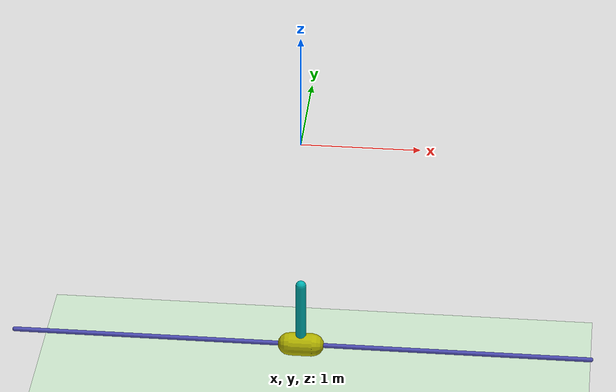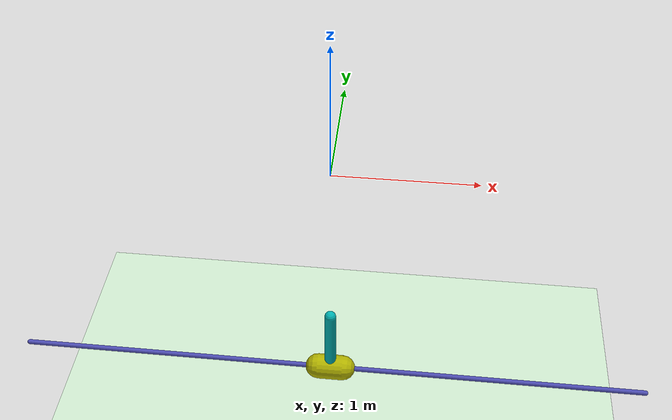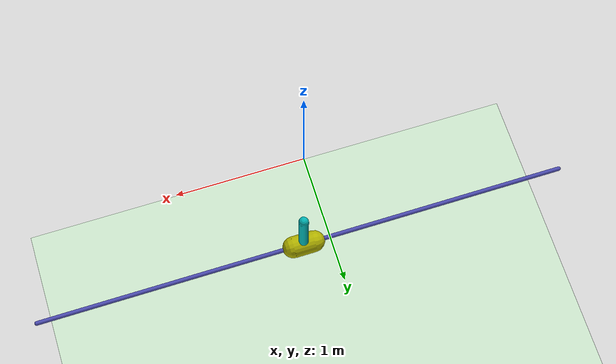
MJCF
<mujoco model="cartpole">

  <visual>
    <headlight ambient=".4 .4 .4" diffuse=".8 .8 .8" specular="0.1 0.1 0.1"/>
    <map znear=".01"/>
    <quality shadowsize="2048"/>
  </visual>

  <asset>
      <texture name="skybox" type="skybox" builtin="gradient" rgb1=".4 .6 .8" rgb2="0 0 0"
               width="800" height="800" mark="random" markrgb="1 1 1"/>
  </asset>

  <asset>
    <texture name="grid" type="2d" builtin="checker" rgb1=".1 .2 .3" rgb2=".2 .3 .4" width="300" height="300" mark="edge" markrgb=".2 .3 .4"/>
    <material name="grid" texture="grid" texrepeat="1 1" texuniform="true" reflectance=".2"/>
    <material name="self" rgba=".7 .5 .3 1"/>
    <material name="self_default" rgba=".7 .5 .3 1"/>
    <material name="self_highlight" rgba="0 .5 .3 1"/>
    <material name="effector" rgba=".7 .4 .2 1"/>
    <material name="effector_default" rgba=".7 .4 .2 1"/>
    <material name="effector_highlight" rgba="0 .5 .3 1"/>
    <material name="decoration" rgba=".3 .5 .7 1"/>
    <material name="eye" rgba="0 .2 1 1"/>
    <material name="target" rgba=".6 .3 .3 1"/>
    <material name="target_default" rgba=".6 .3 .3 1"/>
    <material name="target_highlight" rgba=".6 .3 .3 .4"/>
  </asset>

  <compiler coordinate="local" inertiafromgeom="true"/>
  <custom>
    <numeric data="2" name="frame_skip"/>
  </custom>
  <default>
    <joint damping="0.05"/>
    <geom contype="0" friction="1 0.1 0.1" rgba="0.7 0.7 0 1"/>
  </default>
  <option gravity="disable" integrator="RK4" timestep="0.01"/>
  <size nstack="3000"/>
  <worldbody>
    <geom name="floor" pos="0 0 -3.0" rgba="0.8 0.9 0.8 1" size="2.5 2.5 2.5" type="plane"/>
    <geom name="rail" pos="0 0 -2.0" quat="0.707 0 0.707 0" rgba="0.3 0.3 0.7 1" size="0.02 2.5" type="capsule"/>
    <body name="cart" pos="0 0 0">
      <joint axis="1 0 0" limited="false" margin="0.01" name="slider" pos="0 0 0" range="-1 1" type="slide"/>
      <geom name="cart" pos="0 0 -2.0" quat="0.707 0 0.707 0" size="0.1 0.1" type="capsule"/>
      <body name="pole" pos="0 0 -2.0">
        <joint axis="0 1 0" name="hinge" pos="0 0 0" type="hinge"/>
        <geom fromto="0 0 0 0 0 0.6" name="cpole" rgba="0 0.7 0.7 1" size="0.045 0.3" type="capsule"/>
      </body>
    </body>
  </worldbody>
  <actuator>
    <motor ctrllimited="true" ctrlrange="-1 1" gear="500" joint="slider" name="slide"/>
  </actuator>
</mujoco>
